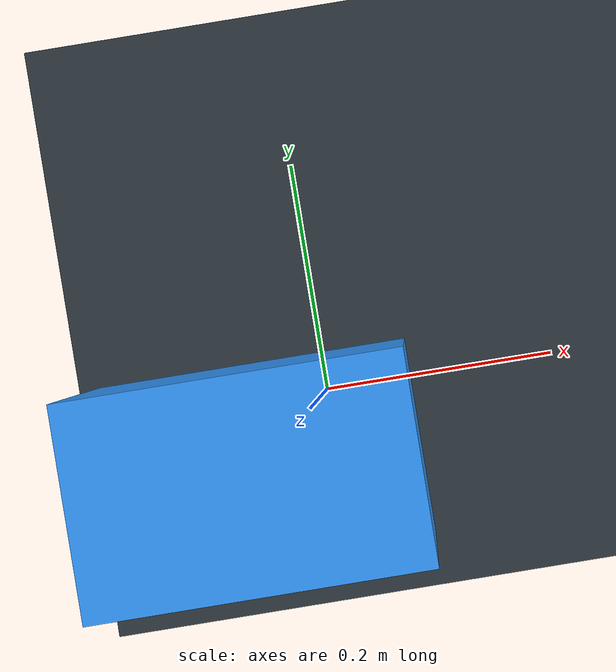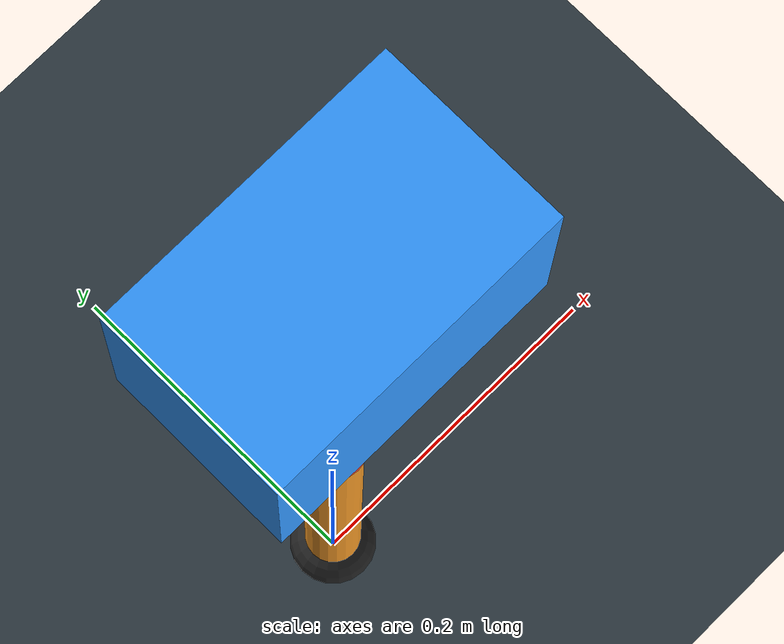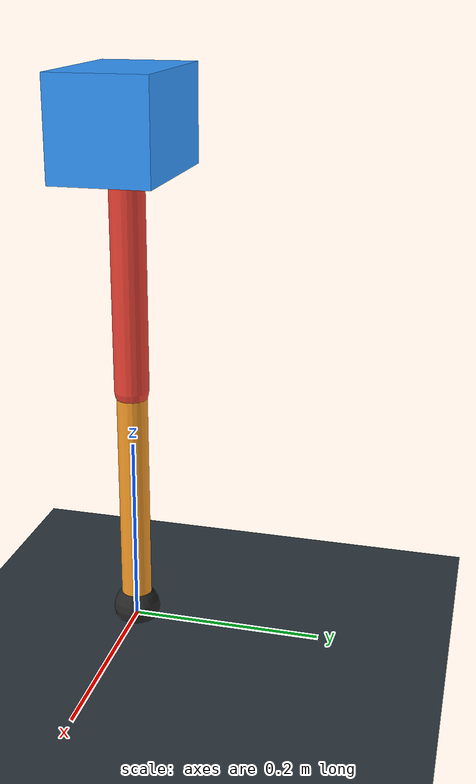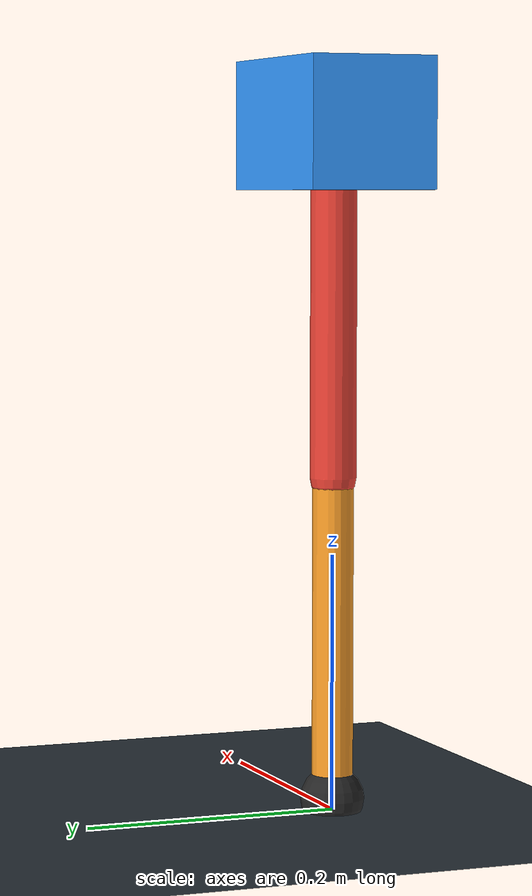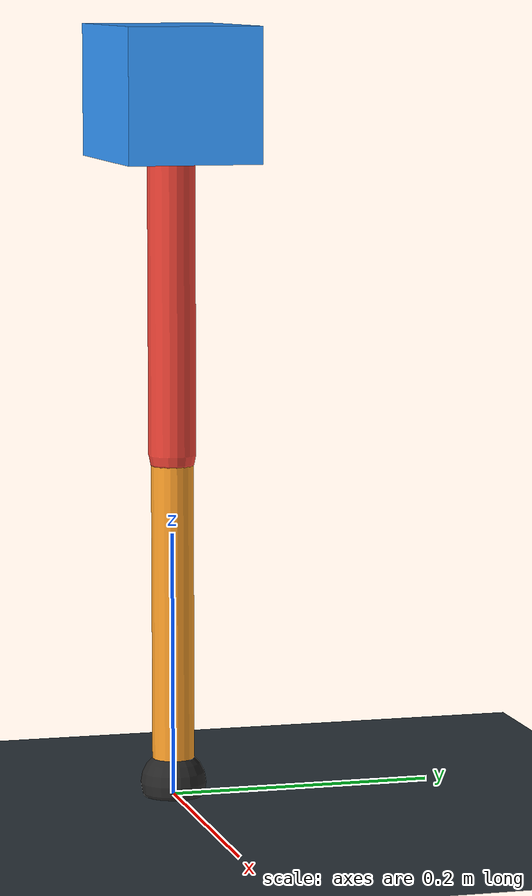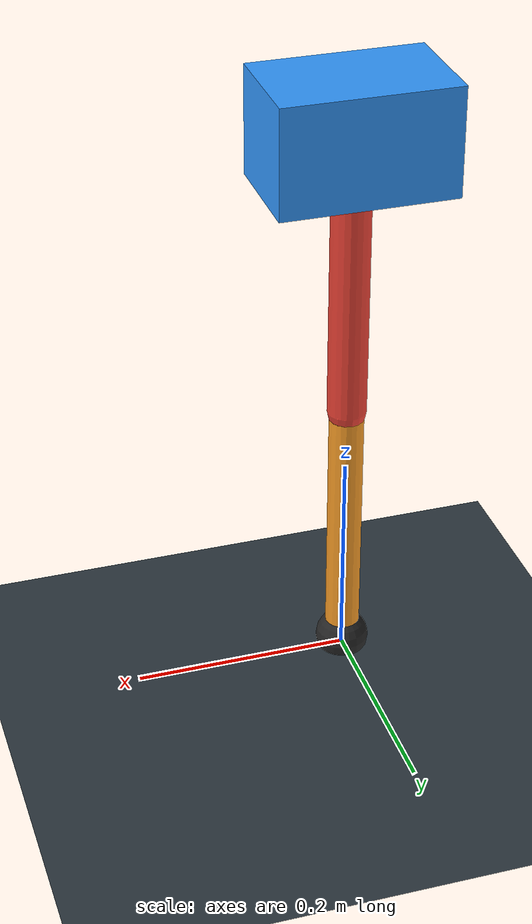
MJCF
<mujoco model="single_axis_two_bar">
  <compiler angle="radian" inertiafromgeom="true"/>
  <option timestep="0.001" integrator="implicitfast" gravity="0 0 -9.81"/>
  <default>
    <joint damping="0.08"/>
    <geom friction="1.2 0.01 0.0001" condim="3"/>
  </default>
  <worldbody>
    <geom name="floor" type="plane" size="5 5 0.1" rgba="0.18 0.22 0.25 1"/>
    <body name="carriage" pos="0 0 0.531986191761442">
      <joint name="pole_slide" type="slide" axis="0 0 1"/>
      <geom name="payload" type="box" size="0.08 0.05 0.05" mass="4.06165936457382" rgba="0.2 0.6 1 1"/>
      <body name="thigh" pos="0 0 0">
        <joint name="hip" type="hinge" axis="0 1 0"/>
        <geom name="thigh_link" type="capsule" fromto="0 0 0 0 0 -0.2718797779671532" size="0.018" mass="0.19371793437589555" rgba="0.9 0.25 0.2 1"/>
        <body name="shank" pos="0 0 -0.2718797779671532">
          <joint name="knee" type="hinge" axis="0 1 0"/>
          <geom name="shank_link" type="capsule" fromto="0 0 0 0 0 -0.25078639910649836" size="0.016" mass="0.17868862321326873" rgba="0.95 0.6 0.15 1"/>
          <geom name="foot" type="sphere" pos="0 0 -0.25078639910649836" size="0.025" mass="0.03" rgba="0.15 0.15 0.15 1"/>
          <site name="toe" pos="0 0 -0.25078639910649836" size="0.008"/>
        </body>
      </body>
    </body>
  </worldbody>
  <actuator>
    <motor name="hip_motor" joint="hip" ctrlrange="-42.0877853475965 42.0877853475965"/>
    <motor name="knee_motor" joint="knee" ctrlrange="-154.21468688245548 154.21468688245548"/>
  </actuator>
</mujoco>
